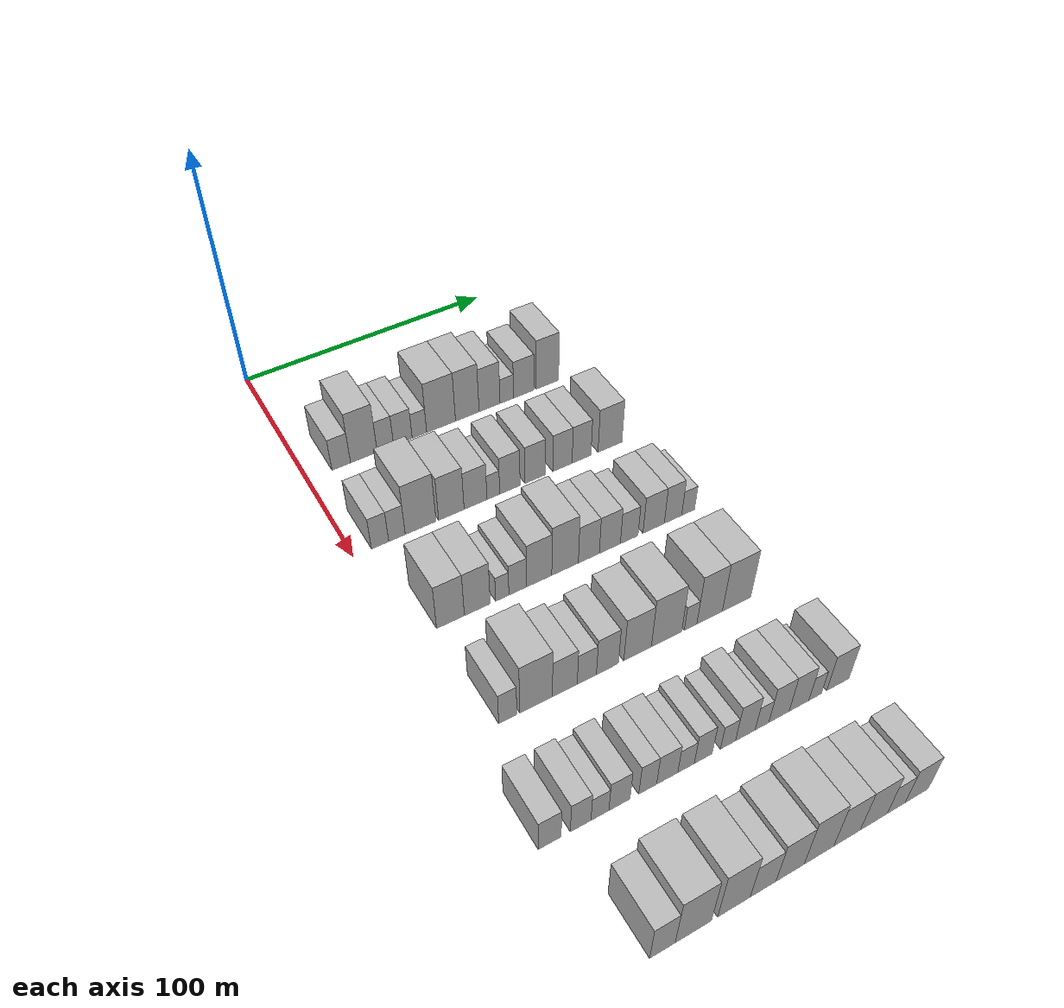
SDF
<sdf version="1.6">
 <world name="default">
  <model name="building_69">
   <static>1</static>
   <pose>50.0000 13.1117 0 0.000000 0.000000 0.000000</pose>
   <link name="link">
    <pose>0 0 7.50 0 0 0</pose>
    <collision name="collision"><geometry><box><size>20.0000 7.2229 15.0000</size></box></geometry></collision>
    <visual name="visual">
     <cast_shadows>0</cast_shadows>
     <geometry><box><size>20.0000 7.2229 15.0000</size></box></geometry>
     <material>
      <script>
       <uri>model://HANNAS_wall/materials/scripts</uri>
       <uri>model://HANNAS_wall/materials/textures</uri>
       <name>vrc/HANNAS_wall</name>
      </script>
     </material>
    </visual>
   </link>
  </model>
  <model name="building_70">
   <static>1</static>
   <pose>50.0000 21.9807 0 0.000000 0.000000 0.000000</pose>
   <link name="link">
    <pose>0 0 12.00 0 0 0</pose>
    <collision name="collision"><geometry><box><size>20.0000 10.5153 24.0000</size></box></geometry></collision>
    <visual name="visual">
     <cast_shadows>0</cast_shadows>
     <geometry><box><size>20.0000 10.5153 24.0000</size></box></geometry>
     <material>
      <script>
       <uri>model://HANNAS_wall/materials/scripts</uri>
       <uri>model://HANNAS_wall/materials/textures</uri>
       <name>vrc/HANNAS_wall</name>
      </script>
     </material>
    </visual>
   </link>
  </model>
  <model name="building_71">
   <static>1</static>
   <pose>50.0000 30.4927 0 0.000000 0.000000 0.000000</pose>
   <link name="link">
    <pose>0 0 7.50 0 0 0</pose>
    <collision name="collision"><geometry><box><size>20.0000 6.5086 15.0000</size></box></geometry></collision>
    <visual name="visual">
     <cast_shadows>0</cast_shadows>
     <geometry><box><size>20.0000 6.5086 15.0000</size></box></geometry>
     <material>
      <script>
       <uri>model://HANNAS_wall/materials/scripts</uri>
       <uri>model://HANNAS_wall/materials/textures</uri>
       <name>vrc/HANNAS_wall</name>
      </script>
     </material>
    </visual>
   </link>
  </model>
  <model name="building_72">
   <static>1</static>
   <pose>50.0000 37.4899 0 0.000000 0.000000 0.000000</pose>
   <link name="link">
    <pose>0 0 7.50 0 0 0</pose>
    <collision name="collision"><geometry><box><size>20.0000 7.4859 15.0000</size></box></geometry></collision>
    <visual name="visual">
     <cast_shadows>0</cast_shadows>
     <geometry><box><size>20.0000 7.4859 15.0000</size></box></geometry>
     <material>
      <script>
       <uri>model://HANNAS_wall/materials/scripts</uri>
       <uri>model://HANNAS_wall/materials/textures</uri>
       <name>vrc/HANNAS_wall</name>
      </script>
     </material>
    </visual>
   </link>
  </model>
  <model name="building_73">
   <static>1</static>
   <pose>50.0000 44.1917 0 0.000000 0.000000 0.000000</pose>
   <link name="link">
    <pose>0 0 6.00 0 0 0</pose>
    <collision name="collision"><geometry><box><size>20.0000 5.9176 12.0000</size></box></geometry></collision>
    <visual name="visual">
     <cast_shadows>0</cast_shadows>
     <geometry><box><size>20.0000 5.9176 12.0000</size></box></geometry>
     <material>
      <script>
       <uri>model://HANNAS_wall/materials/scripts</uri>
       <uri>model://HANNAS_wall/materials/textures</uri>
       <name>vrc/HANNAS_wall</name>
      </script>
     </material>
    </visual>
   </link>
  </model>
  <model name="building_74">
   <static>1</static>
   <pose>50.0000 53.0995 0 0.000000 0.000000 0.000000</pose>
   <link name="link">
    <pose>0 0 12.00 0 0 0</pose>
    <collision name="collision"><geometry><box><size>20.0000 11.8979 24.0000</size></box></geometry></collision>
    <visual name="visual">
     <cast_shadows>0</cast_shadows>
     <geometry><box><size>20.0000 11.8979 24.0000</size></box></geometry>
     <material>
      <script>
       <uri>model://HANNAS_wall/materials/scripts</uri>
       <uri>model://HANNAS_wall/materials/textures</uri>
       <name>vrc/HANNAS_wall</name>
      </script>
     </material>
    </visual>
   </link>
  </model>
  <model name="building_75">
   <static>1</static>
   <pose>50.0000 64.0061 0 0.000000 0.000000 0.000000</pose>
   <link name="link">
    <pose>0 0 12.00 0 0 0</pose>
    <collision name="collision"><geometry><box><size>20.0000 9.9154 24.0000</size></box></geometry></collision>
    <visual name="visual">
     <cast_shadows>0</cast_shadows>
     <geometry><box><size>20.0000 9.9154 24.0000</size></box></geometry>
     <material>
      <script>
       <uri>model://HANNAS_wall/materials/scripts</uri>
       <uri>model://HANNAS_wall/materials/textures</uri>
       <name>vrc/HANNAS_wall</name>
      </script>
     </material>
    </visual>
   </link>
  </model>
  <model name="building_76">
   <static>1</static>
   <pose>50.0000 73.4314 0 0.000000 0.000000 0.000000</pose>
   <link name="link">
    <pose>0 0 10.50 0 0 0</pose>
    <collision name="collision"><geometry><box><size>20.0000 8.9352 21.0000</size></box></geometry></collision>
    <visual name="visual">
     <cast_shadows>0</cast_shadows>
     <geometry><box><size>20.0000 8.9352 21.0000</size></box></geometry>
     <material>
      <script>
       <uri>model://HANNAS_wall/materials/scripts</uri>
       <uri>model://HANNAS_wall/materials/textures</uri>
       <name>vrc/HANNAS_wall</name>
      </script>
     </material>
    </visual>
   </link>
  </model>
  <model name="building_77">
   <static>1</static>
   <pose>50.0000 80.8159 0 0.000000 0.000000 0.000000</pose>
   <link name="link">
    <pose>0 0 6.00 0 0 0</pose>
    <collision name="collision"><geometry><box><size>20.0000 5.8337 12.0000</size></box></geometry></collision>
    <visual name="visual">
     <cast_shadows>0</cast_shadows>
     <geometry><box><size>20.0000 5.8337 12.0000</size></box></geometry>
     <material>
      <script>
       <uri>model://HANNAS_wall/materials/scripts</uri>
       <uri>model://HANNAS_wall/materials/textures</uri>
       <name>vrc/HANNAS_wall</name>
      </script>
     </material>
    </visual>
   </link>
  </model>
  <model name="building_78">
   <static>1</static>
   <pose>50.0000 88.1796 0 0.000000 0.000000 0.000000</pose>
   <link name="link">
    <pose>0 0 9.00 0 0 0</pose>
    <collision name="collision"><geometry><box><size>20.0000 8.8938 18.0000</size></box></geometry></collision>
    <visual name="visual">
     <cast_shadows>0</cast_shadows>
     <geometry><box><size>20.0000 8.8938 18.0000</size></box></geometry>
     <material>
      <script>
       <uri>model://HANNAS_wall/materials/scripts</uri>
       <uri>model://HANNAS_wall/materials/textures</uri>
       <name>vrc/HANNAS_wall</name>
      </script>
     </material>
    </visual>
   </link>
  </model>
  <model name="building_79">
   <static>1</static>
   <pose>50.0000 98.5539 0 0.000000 0.000000 0.000000</pose>
   <link name="link">
    <pose>0 0 12.00 0 0 0</pose>
    <collision name="collision"><geometry><box><size>20.0000 9.8548 24.0000</size></box></geometry></collision>
    <visual name="visual">
     <cast_shadows>0</cast_shadows>
     <geometry><box><size>20.0000 9.8548 24.0000</size></box></geometry>
     <material>
      <script>
       <uri>model://HANNAS_wall/materials/scripts</uri>
       <uri>model://HANNAS_wall/materials/textures</uri>
       <name>vrc/HANNAS_wall</name>
      </script>
     </material>
    </visual>
   </link>
  </model>
  <model name="building_199">
   <static>1</static>
   <pose>90.0000 9.7603 0 0.000000 0.000000 0.000000</pose>
   <link name="link">
    <pose>0 0 7.50 0 0 0</pose>
    <collision name="collision"><geometry><box><size>20.0000 6.3908 15.0000</size></box></geometry></collision>
    <visual name="visual">
     <cast_shadows>0</cast_shadows>
     <geometry><box><size>20.0000 6.3908 15.0000</size></box></geometry>
     <material>
      <script>
       <uri>model://HANNAS_wall/materials/scripts</uri>
       <uri>model://HANNAS_wall/materials/textures</uri>
       <name>vrc/HANNAS_wall</name>
      </script>
     </material>
    </visual>
   </link>
  </model>
  <model name="building_200">
   <static>1</static>
   <pose>90.0000 16.0520 0 0.000000 0.000000 0.000000</pose>
   <link name="link">
    <pose>0 0 7.50 0 0 0</pose>
    <collision name="collision"><geometry><box><size>20.0000 6.1927 15.0000</size></box></geometry></collision>
    <visual name="visual">
     <cast_shadows>0</cast_shadows>
     <geometry><box><size>20.0000 6.1927 15.0000</size></box></geometry>
     <material>
      <script>
       <uri>model://HANNAS_wall/materials/scripts</uri>
       <uri>model://HANNAS_wall/materials/textures</uri>
       <name>vrc/HANNAS_wall</name>
      </script>
     </material>
    </visual>
   </link>
  </model>
  <model name="building_201">
   <static>1</static>
   <pose>90.0000 24.9885 0 0.000000 0.000000 0.000000</pose>
   <link name="link">
    <pose>0 0 12.00 0 0 0</pose>
    <collision name="collision"><geometry><box><size>20.0000 11.6802 24.0000</size></box></geometry></collision>
    <visual name="visual">
     <cast_shadows>0</cast_shadows>
     <geometry><box><size>20.0000 11.6802 24.0000</size></box></geometry>
     <material>
      <script>
       <uri>model://HANNAS_wall/materials/scripts</uri>
       <uri>model://HANNAS_wall/materials/textures</uri>
       <name>vrc/HANNAS_wall</name>
      </script>
     </material>
    </visual>
   </link>
  </model>
  <model name="building_202">
   <static>1</static>
   <pose>90.0000 36.7633 0 0.000000 0.000000 0.000000</pose>
   <link name="link">
    <pose>0 0 10.50 0 0 0</pose>
    <collision name="collision"><geometry><box><size>20.0000 9.8695 21.0000</size></box></geometry></collision>
    <visual name="visual">
     <cast_shadows>0</cast_shadows>
     <geometry><box><size>20.0000 9.8695 21.0000</size></box></geometry>
     <material>
      <script>
       <uri>model://HANNAS_wall/materials/scripts</uri>
       <uri>model://HANNAS_wall/materials/textures</uri>
       <name>vrc/HANNAS_wall</name>
      </script>
     </material>
    </visual>
   </link>
  </model>
  <model name="building_203">
   <static>1</static>
   <pose>90.0000 46.1852 0 0.000000 0.000000 0.000000</pose>
   <link name="link">
    <pose>0 0 9.00 0 0 0</pose>
    <collision name="collision"><geometry><box><size>20.0000 8.9742 18.0000</size></box></geometry></collision>
    <visual name="visual">
     <cast_shadows>0</cast_shadows>
     <geometry><box><size>20.0000 8.9742 18.0000</size></box></geometry>
     <material>
      <script>
       <uri>model://HANNAS_wall/materials/scripts</uri>
       <uri>model://HANNAS_wall/materials/textures</uri>
       <name>vrc/HANNAS_wall</name>
      </script>
     </material>
    </visual>
   </link>
  </model>
  <model name="building_204">
   <static>1</static>
   <pose>90.0000 53.2055 0 0.000000 0.000000 0.000000</pose>
   <link name="link">
    <pose>0 0 6.00 0 0 0</pose>
    <collision name="collision"><geometry><box><size>20.0000 5.0664 12.0000</size></box></geometry></collision>
    <visual name="visual">
     <cast_shadows>0</cast_shadows>
     <geometry><box><size>20.0000 5.0664 12.0000</size></box></geometry>
     <material>
      <script>
       <uri>model://HANNAS_wall/materials/scripts</uri>
       <uri>model://HANNAS_wall/materials/textures</uri>
       <name>vrc/HANNAS_wall</name>
      </script>
     </material>
    </visual>
   </link>
  </model>
  <model name="building_205">
   <static>1</static>
   <pose>90.0000 59.8243 0 0.000000 0.000000 0.000000</pose>
   <link name="link">
    <pose>0 0 9.00 0 0 0</pose>
    <collision name="collision"><geometry><box><size>20.0000 8.1713 18.0000</size></box></geometry></collision>
    <visual name="visual">
     <cast_shadows>0</cast_shadows>
     <geometry><box><size>20.0000 8.1713 18.0000</size></box></geometry>
     <material>
      <script>
       <uri>model://HANNAS_wall/materials/scripts</uri>
       <uri>model://HANNAS_wall/materials/textures</uri>
       <name>vrc/HANNAS_wall</name>
      </script>
     </material>
    </visual>
   </link>
  </model>
  <model name="building_206">
   <static>1</static>
   <pose>90.0000 70.1009 0 0.000000 0.000000 0.000000</pose>
   <link name="link">
    <pose>0 0 9.00 0 0 0</pose>
    <collision name="collision"><geometry><box><size>20.0000 8.3819 18.0000</size></box></geometry></collision>
    <visual name="visual">
     <cast_shadows>0</cast_shadows>
     <geometry><box><size>20.0000 8.3819 18.0000</size></box></geometry>
     <material>
      <script>
       <uri>model://HANNAS_wall/materials/scripts</uri>
       <uri>model://HANNAS_wall/materials/textures</uri>
       <name>vrc/HANNAS_wall</name>
      </script>
     </material>
    </visual>
   </link>
  </model>
  <model name="building_207">
   <static>1</static>
   <pose>90.0000 81.3185 0 0.000000 0.000000 0.000000</pose>
   <link name="link">
    <pose>0 0 9.00 0 0 0</pose>
    <collision name="collision"><geometry><box><size>20.0000 8.0533 18.0000</size></box></geometry></collision>
    <visual name="visual">
     <cast_shadows>0</cast_shadows>
     <geometry><box><size>20.0000 8.0533 18.0000</size></box></geometry>
     <material>
      <script>
       <uri>model://HANNAS_wall/materials/scripts</uri>
       <uri>model://HANNAS_wall/materials/textures</uri>
       <name>vrc/HANNAS_wall</name>
      </script>
     </material>
    </visual>
   </link>
  </model>
  <model name="building_208">
   <static>1</static>
   <pose>90.0000 89.3182 0 0.000000 0.000000 0.000000</pose>
   <link name="link">
    <pose>0 0 9.00 0 0 0</pose>
    <collision name="collision"><geometry><box><size>20.0000 7.9461 18.0000</size></box></geometry></collision>
    <visual name="visual">
     <cast_shadows>0</cast_shadows>
     <geometry><box><size>20.0000 7.9461 18.0000</size></box></geometry>
     <material>
      <script>
       <uri>model://HANNAS_wall/materials/scripts</uri>
       <uri>model://HANNAS_wall/materials/textures</uri>
       <name>vrc/HANNAS_wall</name>
      </script>
     </material>
    </visual>
   </link>
  </model>
  <model name="building_209">
   <static>1</static>
   <pose>90.0000 101.4234 0 0.000000 0.000000 0.000000</pose>
   <link name="link">
    <pose>0 0 10.50 0 0 0</pose>
    <collision name="collision"><geometry><box><size>20.0000 10.2644 21.0000</size></box></geometry></collision>
    <visual name="visual">
     <cast_shadows>0</cast_shadows>
     <geometry><box><size>20.0000 10.2644 21.0000</size></box></geometry>
     <material>
      <script>
       <uri>model://HANNAS_wall/materials/scripts</uri>
       <uri>model://HANNAS_wall/materials/textures</uri>
       <name>vrc/HANNAS_wall</name>
      </script>
     </material>
    </visual>
   </link>
  </model>
  <model name="building_340">
   <static>1</static>
   <pose>130.0000 15.8299 0 0.000000 0.000000 0.000000</pose>
   <link name="link">
    <pose>0 0 10.50 0 0 0</pose>
    <collision name="collision"><geometry><box><size>20.0000 9.9596 21.0000</size></box></geometry></collision>
    <visual name="visual">
     <cast_shadows>0</cast_shadows>
     <geometry><box><size>20.0000 9.9596 21.0000</size></box></geometry>
     <material>
      <script>
       <uri>model://HANNAS_wall/materials/scripts</uri>
       <uri>model://HANNAS_wall/materials/textures</uri>
       <name>vrc/HANNAS_wall</name>
      </script>
     </material>
    </visual>
   </link>
  </model>
  <model name="building_341">
   <static>1</static>
   <pose>130.0000 25.5092 0 0.000000 0.000000 0.000000</pose>
   <link name="link">
    <pose>0 0 10.50 0 0 0</pose>
    <collision name="collision"><geometry><box><size>20.0000 9.3991 21.0000</size></box></geometry></collision>
    <visual name="visual">
     <cast_shadows>0</cast_shadows>
     <geometry><box><size>20.0000 9.3991 21.0000</size></box></geometry>
     <material>
      <script>
       <uri>model://HANNAS_wall/materials/scripts</uri>
       <uri>model://HANNAS_wall/materials/textures</uri>
       <name>vrc/HANNAS_wall</name>
      </script>
     </material>
    </visual>
   </link>
  </model>
  <model name="building_342">
   <static>1</static>
   <pose>130.0000 34.6546 0 0.000000 0.000000 0.000000</pose>
   <link name="link">
    <pose>0 0 6.00 0 0 0</pose>
    <collision name="collision"><geometry><box><size>20.0000 4.8918 12.0000</size></box></geometry></collision>
    <visual name="visual">
     <cast_shadows>0</cast_shadows>
     <geometry><box><size>20.0000 4.8918 12.0000</size></box></geometry>
     <material>
      <script>
       <uri>model://HANNAS_wall/materials/scripts</uri>
       <uri>model://HANNAS_wall/materials/textures</uri>
       <name>vrc/HANNAS_wall</name>
      </script>
     </material>
    </visual>
   </link>
  </model>
  <model name="building_343">
   <static>1</static>
   <pose>130.0000 40.4305 0 0.000000 0.000000 0.000000</pose>
   <link name="link">
    <pose>0 0 7.50 0 0 0</pose>
    <collision name="collision"><geometry><box><size>20.0000 6.6600 15.0000</size></box></geometry></collision>
    <visual name="visual">
     <cast_shadows>0</cast_shadows>
     <geometry><box><size>20.0000 6.6600 15.0000</size></box></geometry>
     <material>
      <script>
       <uri>model://HANNAS_wall/materials/scripts</uri>
       <uri>model://HANNAS_wall/materials/textures</uri>
       <name>vrc/HANNAS_wall</name>
      </script>
     </material>
    </visual>
   </link>
  </model>
  <model name="building_344">
   <static>1</static>
   <pose>130.0000 48.5092 0 0.000000 0.000000 0.000000</pose>
   <link name="link">
    <pose>0 0 10.50 0 0 0</pose>
    <collision name="collision"><geometry><box><size>20.0000 9.4973 21.0000</size></box></geometry></collision>
    <visual name="visual">
     <cast_shadows>0</cast_shadows>
     <geometry><box><size>20.0000 9.4973 21.0000</size></box></geometry>
     <material>
      <script>
       <uri>model://HANNAS_wall/materials/scripts</uri>
       <uri>model://HANNAS_wall/materials/textures</uri>
       <name>vrc/HANNAS_wall</name>
      </script>
     </material>
    </visual>
   </link>
  </model>
  <model name="building_345">
   <static>1</static>
   <pose>130.0000 58.3825 0 0.000000 0.000000 0.000000</pose>
   <link name="link">
    <pose>0 0 12.00 0 0 0</pose>
    <collision name="collision"><geometry><box><size>20.0000 10.2495 24.0000</size></box></geometry></collision>
    <visual name="visual">
     <cast_shadows>0</cast_shadows>
     <geometry><box><size>20.0000 10.2495 24.0000</size></box></geometry>
     <material>
      <script>
       <uri>model://HANNAS_wall/materials/scripts</uri>
       <uri>model://HANNAS_wall/materials/textures</uri>
       <name>vrc/HANNAS_wall</name>
      </script>
     </material>
    </visual>
   </link>
  </model>
  <model name="building_346">
   <static>1</static>
   <pose>130.0000 67.6126 0 0.000000 0.000000 0.000000</pose>
   <link name="link">
    <pose>0 0 9.00 0 0 0</pose>
    <collision name="collision"><geometry><box><size>20.0000 8.2106 18.0000</size></box></geometry></collision>
    <visual name="visual">
     <cast_shadows>0</cast_shadows>
     <geometry><box><size>20.0000 8.2106 18.0000</size></box></geometry>
     <material>
      <script>
       <uri>model://HANNAS_wall/materials/scripts</uri>
       <uri>model://HANNAS_wall/materials/textures</uri>
       <name>vrc/HANNAS_wall</name>
      </script>
     </material>
    </visual>
   </link>
  </model>
  <model name="building_347">
   <static>1</static>
   <pose>130.0000 75.9115 0 0.000000 0.000000 0.000000</pose>
   <link name="link">
    <pose>0 0 9.00 0 0 0</pose>
    <collision name="collision"><geometry><box><size>20.0000 8.3872 18.0000</size></box></geometry></collision>
    <visual name="visual">
     <cast_shadows>0</cast_shadows>
     <geometry><box><size>20.0000 8.3872 18.0000</size></box></geometry>
     <material>
      <script>
       <uri>model://HANNAS_wall/materials/scripts</uri>
       <uri>model://HANNAS_wall/materials/textures</uri>
       <name>vrc/HANNAS_wall</name>
      </script>
     </material>
    </visual>
   </link>
  </model>
  <model name="building_348">
   <static>1</static>
   <pose>130.0000 83.6707 0 0.000000 0.000000 0.000000</pose>
   <link name="link">
    <pose>0 0 7.50 0 0 0</pose>
    <collision name="collision"><geometry><box><size>20.0000 7.1312 15.0000</size></box></geometry></collision>
    <visual name="visual">
     <cast_shadows>0</cast_shadows>
     <geometry><box><size>20.0000 7.1312 15.0000</size></box></geometry>
     <material>
      <script>
       <uri>model://HANNAS_wall/materials/scripts</uri>
       <uri>model://HANNAS_wall/materials/textures</uri>
       <name>vrc/HANNAS_wall</name>
      </script>
     </material>
    </visual>
   </link>
  </model>
  <model name="building_349">
   <static>1</static>
   <pose>130.0000 93.5987 0 0.000000 0.000000 0.000000</pose>
   <link name="link">
    <pose>0 0 9.00 0 0 0</pose>
    <collision name="collision"><geometry><box><size>20.0000 8.7247 18.0000</size></box></geometry></collision>
    <visual name="visual">
     <cast_shadows>0</cast_shadows>
     <geometry><box><size>20.0000 8.7247 18.0000</size></box></geometry>
     <material>
      <script>
       <uri>model://HANNAS_wall/materials/scripts</uri>
       <uri>model://HANNAS_wall/materials/textures</uri>
       <name>vrc/HANNAS_wall</name>
      </script>
     </material>
    </visual>
   </link>
  </model>
  <model name="building_350">
   <static>1</static>
   <pose>130.0000 101.5778 0 0.000000 0.000000 0.000000</pose>
   <link name="link">
    <pose>0 0 9.00 0 0 0</pose>
    <collision name="collision"><geometry><box><size>20.0000 7.2336 18.0000</size></box></geometry></collision>
    <visual name="visual">
     <cast_shadows>0</cast_shadows>
     <geometry><box><size>20.0000 7.2336 18.0000</size></box></geometry>
     <material>
      <script>
       <uri>model://HANNAS_wall/materials/scripts</uri>
       <uri>model://HANNAS_wall/materials/textures</uri>
       <name>vrc/HANNAS_wall</name>
      </script>
     </material>
    </visual>
   </link>
  </model>
  <model name="building_351">
   <static>1</static>
   <pose>130.0000 107.9066 0 0.000000 0.000000 0.000000</pose>
   <link name="link">
    <pose>0 0 6.00 0 0 0</pose>
    <collision name="collision"><geometry><box><size>20.0000 5.4239 12.0000</size></box></geometry></collision>
    <visual name="visual">
     <cast_shadows>0</cast_shadows>
     <geometry><box><size>20.0000 5.4239 12.0000</size></box></geometry>
     <material>
      <script>
       <uri>model://HANNAS_wall/materials/scripts</uri>
       <uri>model://HANNAS_wall/materials/textures</uri>
       <name>vrc/HANNAS_wall</name>
      </script>
     </material>
    </visual>
   </link>
  </model>
  <model name="building_477">
   <static>1</static>
   <pose>170.0000 14.4190 0 0.000000 0.000000 0.000000</pose>
   <link name="link">
    <pose>0 0 7.50 0 0 0</pose>
    <collision name="collision"><geometry><box><size>20.0000 6.1769 15.0000</size></box></geometry></collision>
    <visual name="visual">
     <cast_shadows>0</cast_shadows>
     <geometry><box><size>20.0000 6.1769 15.0000</size></box></geometry>
     <material>
      <script>
       <uri>model://HANNAS_wall/materials/scripts</uri>
       <uri>model://HANNAS_wall/materials/textures</uri>
       <name>vrc/HANNAS_wall</name>
      </script>
     </material>
    </visual>
   </link>
  </model>
  <model name="building_478">
   <static>1</static>
   <pose>170.0000 24.1749 0 0.000000 0.000000 0.000000</pose>
   <link name="link">
    <pose>0 0 12.00 0 0 0</pose>
    <collision name="collision"><geometry><box><size>20.0000 11.3350 24.0000</size></box></geometry></collision>
    <visual name="visual">
     <cast_shadows>0</cast_shadows>
     <geometry><box><size>20.0000 11.3350 24.0000</size></box></geometry>
     <material>
      <script>
       <uri>model://HANNAS_wall/materials/scripts</uri>
       <uri>model://HANNAS_wall/materials/textures</uri>
       <name>vrc/HANNAS_wall</name>
      </script>
     </material>
    </visual>
   </link>
  </model>
  <model name="building_479">
   <static>1</static>
   <pose>170.0000 34.2581 0 0.000000 0.000000 0.000000</pose>
   <link name="link">
    <pose>0 0 9.00 0 0 0</pose>
    <collision name="collision"><geometry><box><size>20.0000 8.8314 18.0000</size></box></geometry></collision>
    <visual name="visual">
     <cast_shadows>0</cast_shadows>
     <geometry><box><size>20.0000 8.8314 18.0000</size></box></geometry>
     <material>
      <script>
       <uri>model://HANNAS_wall/materials/scripts</uri>
       <uri>model://HANNAS_wall/materials/textures</uri>
       <name>vrc/HANNAS_wall</name>
      </script>
     </material>
    </visual>
   </link>
  </model>
  <model name="building_480">
   <static>1</static>
   <pose>170.0000 42.1265 0 0.000000 0.000000 0.000000</pose>
   <link name="link">
    <pose>0 0 7.50 0 0 0</pose>
    <collision name="collision"><geometry><box><size>20.0000 6.9055 15.0000</size></box></geometry></collision>
    <visual name="visual">
     <cast_shadows>0</cast_shadows>
     <geometry><box><size>20.0000 6.9055 15.0000</size></box></geometry>
     <material>
      <script>
       <uri>model://HANNAS_wall/materials/scripts</uri>
       <uri>model://HANNAS_wall/materials/textures</uri>
       <name>vrc/HANNAS_wall</name>
      </script>
     </material>
    </visual>
   </link>
  </model>
  <model name="building_481">
   <static>1</static>
   <pose>170.0000 49.5810 0 0.000000 0.000000 0.000000</pose>
   <link name="link">
    <pose>0 0 9.00 0 0 0</pose>
    <collision name="collision"><geometry><box><size>20.0000 8.0035 18.0000</size></box></geometry></collision>
    <visual name="visual">
     <cast_shadows>0</cast_shadows>
     <geometry><box><size>20.0000 8.0035 18.0000</size></box></geometry>
     <material>
      <script>
       <uri>model://HANNAS_wall/materials/scripts</uri>
       <uri>model://HANNAS_wall/materials/textures</uri>
       <name>vrc/HANNAS_wall</name>
      </script>
     </material>
    </visual>
   </link>
  </model>
  <model name="building_482">
   <static>1</static>
   <pose>170.0000 60.7104 0 0.000000 0.000000 0.000000</pose>
   <link name="link">
    <pose>0 0 10.50 0 0 0</pose>
    <collision name="collision"><geometry><box><size>20.0000 10.2553 21.0000</size></box></geometry></collision>
    <visual name="visual">
     <cast_shadows>0</cast_shadows>
     <geometry><box><size>20.0000 10.2553 21.0000</size></box></geometry>
     <material>
      <script>
       <uri>model://HANNAS_wall/materials/scripts</uri>
       <uri>model://HANNAS_wall/materials/textures</uri>
       <name>vrc/HANNAS_wall</name>
      </script>
     </material>
    </visual>
   </link>
  </model>
  <model name="building_483">
   <static>1</static>
   <pose>170.0000 71.6045 0 0.000000 0.000000 0.000000</pose>
   <link name="link">
    <pose>0 0 12.00 0 0 0</pose>
    <collision name="collision"><geometry><box><size>20.0000 11.5330 24.0000</size></box></geometry></collision>
    <visual name="visual">
     <cast_shadows>0</cast_shadows>
     <geometry><box><size>20.0000 11.5330 24.0000</size></box></geometry>
     <material>
      <script>
       <uri>model://HANNAS_wall/materials/scripts</uri>
       <uri>model://HANNAS_wall/materials/textures</uri>
       <name>vrc/HANNAS_wall</name>
      </script>
     </material>
    </visual>
   </link>
  </model>
  <model name="building_484">
   <static>1</static>
   <pose>170.0000 80.8045 0 0.000000 0.000000 0.000000</pose>
   <link name="link">
    <pose>0 0 6.00 0 0 0</pose>
    <collision name="collision"><geometry><box><size>20.0000 4.8670 12.0000</size></box></geometry></collision>
    <visual name="visual">
     <cast_shadows>0</cast_shadows>
     <geometry><box><size>20.0000 4.8670 12.0000</size></box></geometry>
     <material>
      <script>
       <uri>model://HANNAS_wall/materials/scripts</uri>
       <uri>model://HANNAS_wall/materials/textures</uri>
       <name>vrc/HANNAS_wall</name>
      </script>
     </material>
    </visual>
   </link>
  </model>
  <model name="building_485">
   <static>1</static>
   <pose>170.0000 88.2387 0 0.000000 0.000000 0.000000</pose>
   <link name="link">
    <pose>0 0 12.00 0 0 0</pose>
    <collision name="collision"><geometry><box><size>20.0000 10.0013 24.0000</size></box></geometry></collision>
    <visual name="visual">
     <cast_shadows>0</cast_shadows>
     <geometry><box><size>20.0000 10.0013 24.0000</size></box></geometry>
     <material>
      <script>
       <uri>model://HANNAS_wall/materials/scripts</uri>
       <uri>model://HANNAS_wall/materials/textures</uri>
       <name>vrc/HANNAS_wall</name>
      </script>
     </material>
    </visual>
   </link>
  </model>
  <model name="building_486">
   <static>1</static>
   <pose>170.0000 98.8931 0 0.000000 0.000000 0.000000</pose>
   <link name="link">
    <pose>0 0 12.00 0 0 0</pose>
    <collision name="collision"><geometry><box><size>20.0000 11.3076 24.0000</size></box></geometry></collision>
    <visual name="visual">
     <cast_shadows>0</cast_shadows>
     <geometry><box><size>20.0000 11.3076 24.0000</size></box></geometry>
     <material>
      <script>
       <uri>model://HANNAS_wall/materials/scripts</uri>
       <uri>model://HANNAS_wall/materials/textures</uri>
       <name>vrc/HANNAS_wall</name>
      </script>
     </material>
    </visual>
   </link>
  </model>
  <model name="building_617">
   <static>1</static>
   <pose>210.0000 5.3648 0 0.000000 0.000000 0.000000</pose>
   <link name="link">
    <pose>0 0 7.50 0 0 0</pose>
    <collision name="collision"><geometry><box><size>20.0000 7.3272 15.0000</size></box></geometry></collision>
    <visual name="visual">
     <cast_shadows>0</cast_shadows>
     <geometry><box><size>20.0000 7.3272 15.0000</size></box></geometry>
     <material>
      <script>
       <uri>model://HANNAS_wall/materials/scripts</uri>
       <uri>model://HANNAS_wall/materials/textures</uri>
       <name>vrc/HANNAS_wall</name>
      </script>
     </material>
    </visual>
   </link>
  </model>
  <model name="building_618">
   <static>1</static>
   <pose>210.0000 15.3963 0 0.000000 0.000000 0.000000</pose>
   <link name="link">
    <pose>0 0 7.50 0 0 0</pose>
    <collision name="collision"><geometry><box><size>20.0000 6.7359 15.0000</size></box></geometry></collision>
    <visual name="visual">
     <cast_shadows>0</cast_shadows>
     <geometry><box><size>20.0000 6.7359 15.0000</size></box></geometry>
     <material>
      <script>
       <uri>model://HANNAS_wall/materials/scripts</uri>
       <uri>model://HANNAS_wall/materials/textures</uri>
       <name>vrc/HANNAS_wall</name>
      </script>
     </material>
    </visual>
   </link>
  </model>
  <model name="building_619">
   <static>1</static>
   <pose>210.0000 21.7396 0 0.000000 0.000000 0.000000</pose>
   <link name="link">
    <pose>0 0 6.00 0 0 0</pose>
    <collision name="collision"><geometry><box><size>20.0000 5.9507 12.0000</size></box></geometry></collision>
    <visual name="visual">
     <cast_shadows>0</cast_shadows>
     <geometry><box><size>20.0000 5.9507 12.0000</size></box></geometry>
     <material>
      <script>
       <uri>model://HANNAS_wall/materials/scripts</uri>
       <uri>model://HANNAS_wall/materials/textures</uri>
       <name>vrc/HANNAS_wall</name>
      </script>
     </material>
    </visual>
   </link>
  </model>
  <model name="building_620">
   <static>1</static>
   <pose>210.0000 28.2381 0 0.000000 0.000000 0.000000</pose>
   <link name="link">
    <pose>0 0 7.50 0 0 0</pose>
    <collision name="collision"><geometry><box><size>20.0000 7.0462 15.0000</size></box></geometry></collision>
    <visual name="visual">
     <cast_shadows>0</cast_shadows>
     <geometry><box><size>20.0000 7.0462 15.0000</size></box></geometry>
     <material>
      <script>
       <uri>model://HANNAS_wall/materials/scripts</uri>
       <uri>model://HANNAS_wall/materials/textures</uri>
       <name>vrc/HANNAS_wall</name>
      </script>
     </material>
    </visual>
   </link>
  </model>
  <model name="building_621">
   <static>1</static>
   <pose>210.0000 37.8170 0 0.000000 0.000000 0.000000</pose>
   <link name="link">
    <pose>0 0 7.50 0 0 0</pose>
    <collision name="collision"><geometry><box><size>20.0000 6.1117 15.0000</size></box></geometry></collision>
    <visual name="visual">
     <cast_shadows>0</cast_shadows>
     <geometry><box><size>20.0000 6.1117 15.0000</size></box></geometry>
     <material>
      <script>
       <uri>model://HANNAS_wall/materials/scripts</uri>
       <uri>model://HANNAS_wall/materials/textures</uri>
       <name>vrc/HANNAS_wall</name>
      </script>
     </material>
    </visual>
   </link>
  </model>
  <model name="building_622">
   <static>1</static>
   <pose>210.0000 44.5418 0 0.000000 0.000000 0.000000</pose>
   <link name="link">
    <pose>0 0 7.50 0 0 0</pose>
    <collision name="collision"><geometry><box><size>20.0000 7.3379 15.0000</size></box></geometry></collision>
    <visual name="visual">
     <cast_shadows>0</cast_shadows>
     <geometry><box><size>20.0000 7.3379 15.0000</size></box></geometry>
     <material>
      <script>
       <uri>model://HANNAS_wall/materials/scripts</uri>
       <uri>model://HANNAS_wall/materials/textures</uri>
       <name>vrc/HANNAS_wall</name>
      </script>
     </material>
    </visual>
   </link>
  </model>
  <model name="building_623">
   <static>1</static>
   <pose>210.0000 51.0926 0 0.000000 0.000000 0.000000</pose>
   <link name="link">
    <pose>0 0 6.00 0 0 0</pose>
    <collision name="collision"><geometry><box><size>20.0000 5.7637 12.0000</size></box></geometry></collision>
    <visual name="visual">
     <cast_shadows>0</cast_shadows>
     <geometry><box><size>20.0000 5.7637 12.0000</size></box></geometry>
     <material>
      <script>
       <uri>model://HANNAS_wall/materials/scripts</uri>
       <uri>model://HANNAS_wall/materials/textures</uri>
       <name>vrc/HANNAS_wall</name>
      </script>
     </material>
    </visual>
   </link>
  </model>
  <model name="building_624">
   <static>1</static>
   <pose>210.0000 57.1625 0 0.000000 0.000000 0.000000</pose>
   <link name="link">
    <pose>0 0 7.50 0 0 0</pose>
    <collision name="collision"><geometry><box><size>20.0000 6.3761 15.0000</size></box></geometry></collision>
    <visual name="visual">
     <cast_shadows>0</cast_shadows>
     <geometry><box><size>20.0000 6.3761 15.0000</size></box></geometry>
     <material>
      <script>
       <uri>model://HANNAS_wall/materials/scripts</uri>
       <uri>model://HANNAS_wall/materials/textures</uri>
       <name>vrc/HANNAS_wall</name>
      </script>
     </material>
    </visual>
   </link>
  </model>
  <model name="building_625">
   <static>1</static>
   <pose>210.0000 66.0645 0 0.000000 0.000000 0.000000</pose>
   <link name="link">
    <pose>0 0 6.00 0 0 0</pose>
    <collision name="collision"><geometry><box><size>20.0000 5.4278 12.0000</size></box></geometry></collision>
    <visual name="visual">
     <cast_shadows>0</cast_shadows>
     <geometry><box><size>20.0000 5.4278 12.0000</size></box></geometry>
     <material>
      <script>
       <uri>model://HANNAS_wall/materials/scripts</uri>
       <uri>model://HANNAS_wall/materials/textures</uri>
       <name>vrc/HANNAS_wall</name>
      </script>
     </material>
    </visual>
   </link>
  </model>
  <model name="building_626">
   <static>1</static>
   <pose>210.0000 72.3871 0 0.000000 0.000000 0.000000</pose>
   <link name="link">
    <pose>0 0 9.00 0 0 0</pose>
    <collision name="collision"><geometry><box><size>20.0000 7.2173 18.0000</size></box></geometry></collision>
    <visual name="visual">
     <cast_shadows>0</cast_shadows>
     <geometry><box><size>20.0000 7.2173 18.0000</size></box></geometry>
     <material>
      <script>
       <uri>model://HANNAS_wall/materials/scripts</uri>
       <uri>model://HANNAS_wall/materials/textures</uri>
       <name>vrc/HANNAS_wall</name>
      </script>
     </material>
    </visual>
   </link>
  </model>
  <model name="building_627">
   <static>1</static>
   <pose>210.0000 78.5351 0 0.000000 0.000000 0.000000</pose>
   <link name="link">
    <pose>0 0 6.00 0 0 0</pose>
    <collision name="collision"><geometry><box><size>20.0000 5.0787 12.0000</size></box></geometry></collision>
    <visual name="visual">
     <cast_shadows>0</cast_shadows>
     <geometry><box><size>20.0000 5.0787 12.0000</size></box></geometry>
     <material>
      <script>
       <uri>model://HANNAS_wall/materials/scripts</uri>
       <uri>model://HANNAS_wall/materials/textures</uri>
       <name>vrc/HANNAS_wall</name>
      </script>
     </material>
    </visual>
   </link>
  </model>
  <model name="building_628">
   <static>1</static>
   <pose>210.0000 84.8996 0 0.000000 0.000000 0.000000</pose>
   <link name="link">
    <pose>0 0 9.00 0 0 0</pose>
    <collision name="collision"><geometry><box><size>20.0000 7.6502 18.0000</size></box></geometry></collision>
    <visual name="visual">
     <cast_shadows>0</cast_shadows>
     <geometry><box><size>20.0000 7.6502 18.0000</size></box></geometry>
     <material>
      <script>
       <uri>model://HANNAS_wall/materials/scripts</uri>
       <uri>model://HANNAS_wall/materials/textures</uri>
       <name>vrc/HANNAS_wall</name>
      </script>
     </material>
    </visual>
   </link>
  </model>
  <model name="building_629">
   <static>1</static>
   <pose>210.0000 92.4815 0 0.000000 0.000000 0.000000</pose>
   <link name="link">
    <pose>0 0 9.00 0 0 0</pose>
    <collision name="collision"><geometry><box><size>20.0000 7.5138 18.0000</size></box></geometry></collision>
    <visual name="visual">
     <cast_shadows>0</cast_shadows>
     <geometry><box><size>20.0000 7.5138 18.0000</size></box></geometry>
     <material>
      <script>
       <uri>model://HANNAS_wall/materials/scripts</uri>
       <uri>model://HANNAS_wall/materials/textures</uri>
       <name>vrc/HANNAS_wall</name>
      </script>
     </material>
    </visual>
   </link>
  </model>
  <model name="building_630">
   <static>1</static>
   <pose>210.0000 98.6541 0 0.000000 0.000000 0.000000</pose>
   <link name="link">
    <pose>0 0 6.00 0 0 0</pose>
    <collision name="collision"><geometry><box><size>20.0000 4.8314 12.0000</size></box></geometry></collision>
    <visual name="visual">
     <cast_shadows>0</cast_shadows>
     <geometry><box><size>20.0000 4.8314 12.0000</size></box></geometry>
     <material>
      <script>
       <uri>model://HANNAS_wall/materials/scripts</uri>
       <uri>model://HANNAS_wall/materials/textures</uri>
       <name>vrc/HANNAS_wall</name>
      </script>
     </material>
    </visual>
   </link>
  </model>
  <model name="building_631">
   <static>1</static>
   <pose>210.0000 107.4378 0 0.000000 0.000000 0.000000</pose>
   <link name="link">
    <pose>0 0 9.00 0 0 0</pose>
    <collision name="collision"><geometry><box><size>20.0000 8.7358 18.0000</size></box></geometry></collision>
    <visual name="visual">
     <cast_shadows>0</cast_shadows>
     <geometry><box><size>20.0000 8.7358 18.0000</size></box></geometry>
     <material>
      <script>
       <uri>model://HANNAS_wall/materials/scripts</uri>
       <uri>model://HANNAS_wall/materials/textures</uri>
       <name>vrc/HANNAS_wall</name>
      </script>
     </material>
    </visual>
   </link>
  </model>
  <model name="building_759">
   <static>1</static>
   <pose>250.0000 15.7177 0 0.000000 0.000000 0.000000</pose>
   <link name="link">
    <pose>0 0 9.00 0 0 0</pose>
    <collision name="collision"><geometry><box><size>20.0000 7.9727 18.0000</size></box></geometry></collision>
    <visual name="visual">
     <cast_shadows>0</cast_shadows>
     <geometry><box><size>20.0000 7.9727 18.0000</size></box></geometry>
     <material>
      <script>
       <uri>model://HANNAS_wall/materials/scripts</uri>
       <uri>model://HANNAS_wall/materials/textures</uri>
       <name>vrc/HANNAS_wall</name>
      </script>
     </material>
    </visual>
   </link>
  </model>
  <model name="building_760">
   <static>1</static>
   <pose>250.0000 25.4986 0 0.000000 0.000000 0.000000</pose>
   <link name="link">
    <pose>0 0 12.00 0 0 0</pose>
    <collision name="collision"><geometry><box><size>20.0000 11.5893 24.0000</size></box></geometry></collision>
    <visual name="visual">
     <cast_shadows>0</cast_shadows>
     <geometry><box><size>20.0000 11.5893 24.0000</size></box></geometry>
     <material>
      <script>
       <uri>model://HANNAS_wall/materials/scripts</uri>
       <uri>model://HANNAS_wall/materials/textures</uri>
       <name>vrc/HANNAS_wall</name>
      </script>
     </material>
    </visual>
   </link>
  </model>
  <model name="building_761">
   <static>1</static>
   <pose>250.0000 38.6426 0 0.000000 0.000000 0.000000</pose>
   <link name="link">
    <pose>0 0 12.00 0 0 0</pose>
    <collision name="collision"><geometry><box><size>20.0000 10.6985 24.0000</size></box></geometry></collision>
    <visual name="visual">
     <cast_shadows>0</cast_shadows>
     <geometry><box><size>20.0000 10.6985 24.0000</size></box></geometry>
     <material>
      <script>
       <uri>model://HANNAS_wall/materials/scripts</uri>
       <uri>model://HANNAS_wall/materials/textures</uri>
       <name>vrc/HANNAS_wall</name>
      </script>
     </material>
    </visual>
   </link>
  </model>
  <model name="building_762">
   <static>1</static>
   <pose>250.0000 48.2984 0 0.000000 0.000000 0.000000</pose>
   <link name="link">
    <pose>0 0 9.00 0 0 0</pose>
    <collision name="collision"><geometry><box><size>20.0000 8.6132 18.0000</size></box></geometry></collision>
    <visual name="visual">
     <cast_shadows>0</cast_shadows>
     <geometry><box><size>20.0000 8.6132 18.0000</size></box></geometry>
     <material>
      <script>
       <uri>model://HANNAS_wall/materials/scripts</uri>
       <uri>model://HANNAS_wall/materials/textures</uri>
       <name>vrc/HANNAS_wall</name>
      </script>
     </material>
    </visual>
   </link>
  </model>
  <model name="building_763">
   <static>1</static>
   <pose>250.0000 57.4235 0 0.000000 0.000000 0.000000</pose>
   <link name="link">
    <pose>0 0 10.50 0 0 0</pose>
    <collision name="collision"><geometry><box><size>20.0000 9.6371 21.0000</size></box></geometry></collision>
    <visual name="visual">
     <cast_shadows>0</cast_shadows>
     <geometry><box><size>20.0000 9.6371 21.0000</size></box></geometry>
     <material>
      <script>
       <uri>model://HANNAS_wall/materials/scripts</uri>
       <uri>model://HANNAS_wall/materials/textures</uri>
       <name>vrc/HANNAS_wall</name>
      </script>
     </material>
    </visual>
   </link>
  </model>
  <model name="building_764">
   <static>1</static>
   <pose>250.0000 67.4311 0 0.000000 0.000000 0.000000</pose>
   <link name="link">
    <pose>0 0 12.00 0 0 0</pose>
    <collision name="collision"><geometry><box><size>20.0000 10.3780 24.0000</size></box></geometry></collision>
    <visual name="visual">
     <cast_shadows>0</cast_shadows>
     <geometry><box><size>20.0000 10.3780 24.0000</size></box></geometry>
     <material>
      <script>
       <uri>model://HANNAS_wall/materials/scripts</uri>
       <uri>model://HANNAS_wall/materials/textures</uri>
       <name>vrc/HANNAS_wall</name>
      </script>
     </material>
    </visual>
   </link>
  </model>
  <model name="building_765">
   <static>1</static>
   <pose>250.0000 77.3410 0 0.000000 0.000000 0.000000</pose>
   <link name="link">
    <pose>0 0 10.50 0 0 0</pose>
    <collision name="collision"><geometry><box><size>20.0000 9.4418 21.0000</size></box></geometry></collision>
    <visual name="visual">
     <cast_shadows>0</cast_shadows>
     <geometry><box><size>20.0000 9.4418 21.0000</size></box></geometry>
     <material>
      <script>
       <uri>model://HANNAS_wall/materials/scripts</uri>
       <uri>model://HANNAS_wall/materials/textures</uri>
       <name>vrc/HANNAS_wall</name>
      </script>
     </material>
    </visual>
   </link>
  </model>
  <model name="building_766">
   <static>1</static>
   <pose>250.0000 86.9565 0 0.000000 0.000000 0.000000</pose>
   <link name="link">
    <pose>0 0 10.50 0 0 0</pose>
    <collision name="collision"><geometry><box><size>20.0000 9.7894 21.0000</size></box></geometry></collision>
    <visual name="visual">
     <cast_shadows>0</cast_shadows>
     <geometry><box><size>20.0000 9.7894 21.0000</size></box></geometry>
     <material>
      <script>
       <uri>model://HANNAS_wall/materials/scripts</uri>
       <uri>model://HANNAS_wall/materials/textures</uri>
       <name>vrc/HANNAS_wall</name>
      </script>
     </material>
    </visual>
   </link>
  </model>
  <model name="building_767">
   <static>1</static>
   <pose>250.0000 95.1389 0 0.000000 0.000000 0.000000</pose>
   <link name="link">
    <pose>0 0 7.50 0 0 0</pose>
    <collision name="collision"><geometry><box><size>20.0000 6.5754 15.0000</size></box></geometry></collision>
    <visual name="visual">
     <cast_shadows>0</cast_shadows>
     <geometry><box><size>20.0000 6.5754 15.0000</size></box></geometry>
     <material>
      <script>
       <uri>model://HANNAS_wall/materials/scripts</uri>
       <uri>model://HANNAS_wall/materials/textures</uri>
       <name>vrc/HANNAS_wall</name>
      </script>
     </material>
    </visual>
   </link>
  </model>
  <model name="building_768">
   <static>1</static>
   <pose>250.0000 102.8037 0 0.000000 0.000000 0.000000</pose>
   <link name="link">
    <pose>0 0 9.00 0 0 0</pose>
    <collision name="collision"><geometry><box><size>20.0000 8.7540 18.0000</size></box></geometry></collision>
    <visual name="visual">
     <cast_shadows>0</cast_shadows>
     <geometry><box><size>20.0000 8.7540 18.0000</size></box></geometry>
     <material>
      <script>
       <uri>model://HANNAS_wall/materials/scripts</uri>
       <uri>model://HANNAS_wall/materials/textures</uri>
       <name>vrc/HANNAS_wall</name>
      </script>
     </material>
    </visual>
   </link>
  </model>
 </world>
</sdf>
